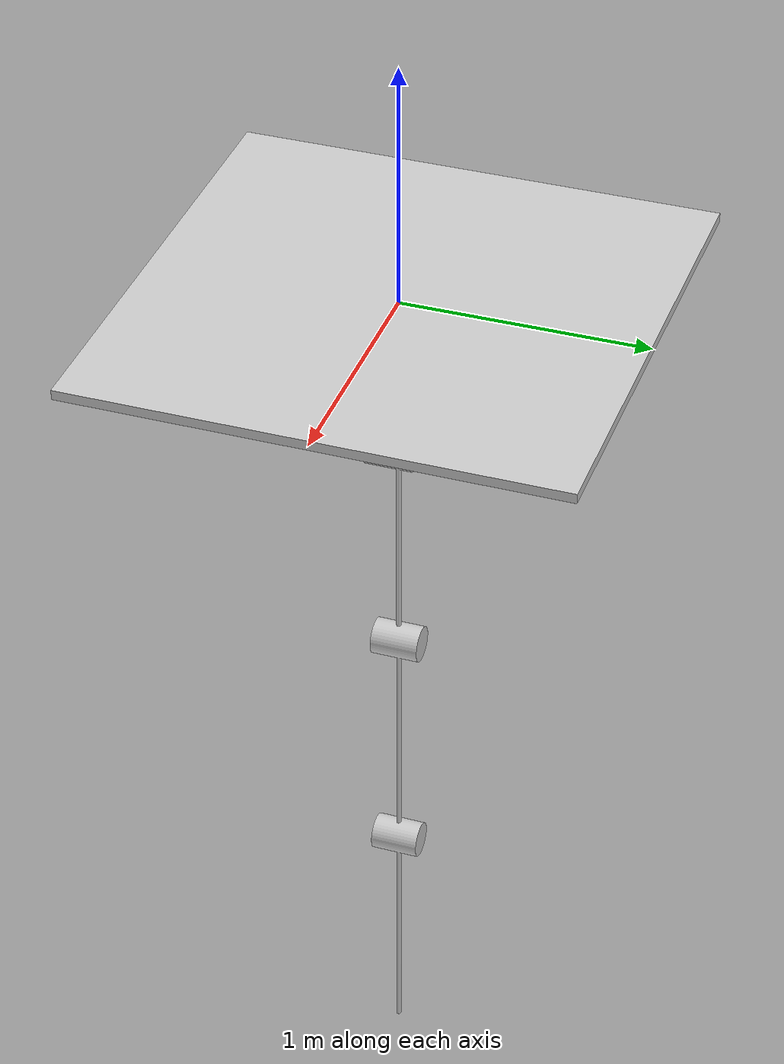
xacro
<?xml version="1.0"?>
<!--FILL IN THE BLANKS-->
<robot name="msd3d" xmlns:xacro="http://www.ros.org/wiki/xacro">

  <property name="M_PI" value="3.1415926535897931" />
  <property name="DEG2RAD" value="0.01745329251994329577" />

  <link name="world" />

  <joint name="joint_0" type="fixed">
    <parent link="world"/>
    <child link="link_0"/>
    <origin rpy="0 0 0" xyz="0 0 0" />
  </joint>

  <link name="link_0">
   <visual>
    <geometry>
      <mesh filename="package://msd3dof_description/meshes/Link0.stl"/>
    </geometry>
    <origin rpy="3.1416 0 1.57079632679" xyz="0 0 0" />
    <material name="grey">
      <color rgba="0.8 0.8 0.8 1"/>
    </material>
   </visual>
  </link>

  <joint name="joint_1" type="prismatic">
    <axis xyz="0 0 -1"/>
    <limit effort="30" velocity="1.0" lower="0.02" upper="0.1"/>
    <parent link="link_0"/>
    <child link="link_1"/>
    <origin rpy="0 0 0" xyz="0 0 -0.5"/>
  </joint>

  <link name="link_1">
   <visual>
    <geometry>
      <mesh filename="package://msd3dof_description/meshes/Link1B.stl"/>
    </geometry>
    <origin rpy="0 0 0" xyz="0 0 0" />
    <material name="grey">
      <color rgba="0.8 0.8 0.8 1"/>
    </material>
   </visual>
  </link>

  <joint name="joint_2" type="revolute">
    <axis xyz="0 -1 0"/>
    <limit effort="30" velocity="1.0" lower="-1.57079632679" upper="1.57079632679"/>
    <parent link="link_1"/>
    <child link="link_2"/>
    <origin rpy="0 0 0" xyz="0 0 -1.075"/>
  </joint>

  <link name="link_2">
   <visual>
    <geometry>
      <mesh filename="package://msd3dof_description/meshes/Link2B.stl"/>
    </geometry>
    <origin rpy="1.57079632679 0 0" xyz="0 0 0" />
    <material name="grey">
      <color rgba="0.8 0.8 0.8 1"/>
    </material>
   </visual>
  </link>

  <joint name="joint_3" type="revolute">
    <axis xyz="0 -1 0"/>
    <limit effort="30" velocity="1.0" lower="-1.57079632679" upper="1.57079632679"/>
    <parent link="link_2"/>
    <child link="link_3"/>
    <origin rpy="0 0 0" xyz="0 0 -1.075"/>
  </joint>

  <link name="link_3">
   <visual>
    <geometry>
      <mesh filename="package://msd3dof_description/meshes/Link2B.stl"/>
    </geometry>
    <origin rpy="1.57079632679 0 0" xyz="0 0 0" />
    <material name="grey">
      <color rgba="0.8 0.8 0.8 1"/>
    </material>
   </visual>
  </link>

  <joint name="end_efector_joint" type="fixed">
    <parent link="link_3"/>
    <child link="end_effector"/>
    <origin rpy="0 0 0" xyz="0 0 -1.075"/>
  </joint>

  <link name="end_effector" />

</robot>
